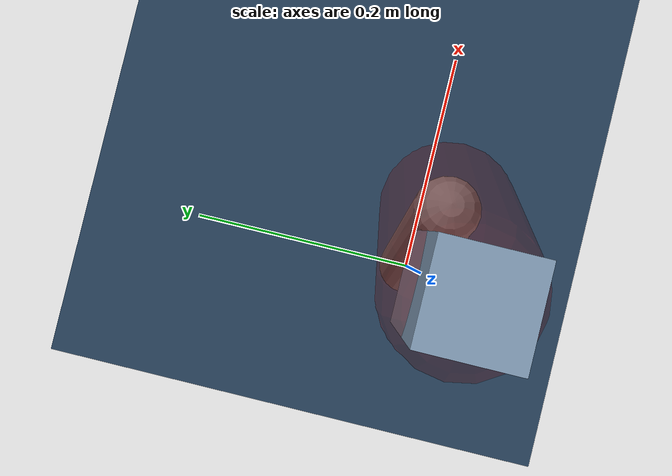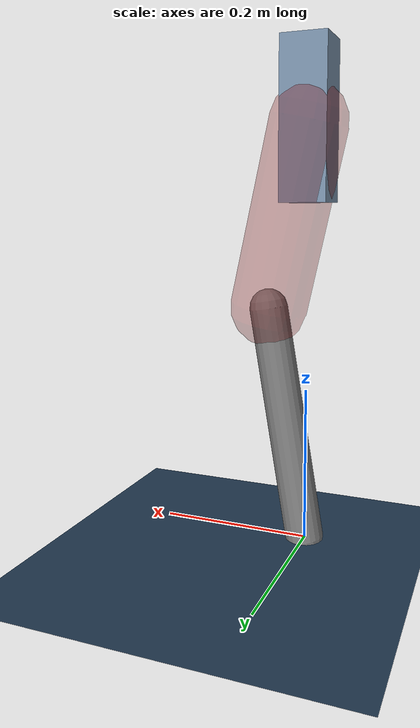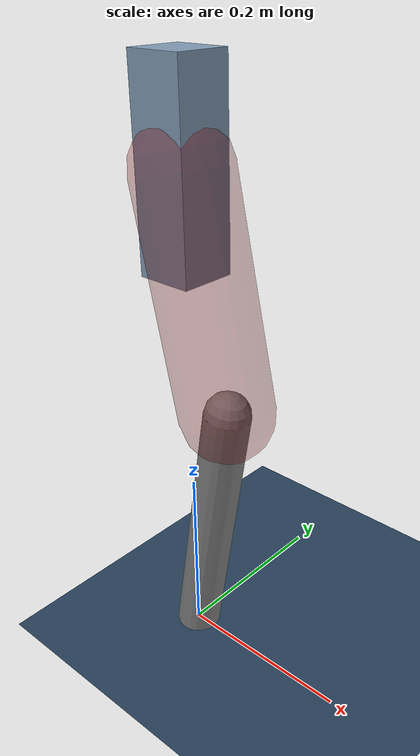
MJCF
<mujoco model="Hopper2D">
	<compiler inertiafromgeom="true" angle="radian" />
	<option timestep="0.001" integrator="implicit" cone="elliptic" solver="Newton" tolerance="1e-10" />

	<default>
		<geom contype="1" conaffinity="1" condim="3" friction="2 0.005 0.0001" solref="0.005 1" />
		<joint limited="true" damping="0.1" />
	</default>

	<asset>
		<texture name="skybox" type="skybox" builtin="gradient" rgb1=".4 .6 .8" rgb2="0 0 0" width="800" height="800" />
		<texture name="grid" type="2d" builtin="checker" rgb1=".1 .2 .3" rgb2=".2 .3 .4" width="300" height="300" mark="edge" markrgb=".2 .3 .4" />
		<material name="ground" texture="grid" texrepeat="1 1" texuniform="true" reflectance="0.1" />
		<material name="leg" rgba="0.5 0.6 0.7 1" />
	</asset>

	<worldbody>

		<geom name="floor" type="plane" size="5 5 0.25" material="ground" />

		<light directional="false" diffuse="0.8 0.8 0.8" specular="0.3 0.3 0.3" pos="0 0 2" dir="0 0 -1" />
		<light mode="targetbodycom" target="base" directional="false" diffuse="0.8 0.8 0.8" specular="0.3 0.3 0.3" pos="0 0 2" dir="0 0 -1" />

		<camera name="fixed" pos="0 -2 1" xyaxes="1 0 0 0 0 1" />
		<camera name="tracking" mode="trackcom" pos="0 -3 1" />

		<body name="root" pos="0 0 0.541099569847755">
			<joint name="slide_x" type="slide" axis="1 0 0" range="-100 100" />
			<joint name="slide_z" type="slide" axis="0 0 1" range="0 10" />

			<body name="base" pos="0 0 0">
				<geom name="torso" type="box" size="0.03 0.03 0.1" mass="2.225" material="leg" />

				<body name="link1" pos="0 0 0" euler="0 1.353779509006586 0">
					<joint type="hinge" axis="0 -1 0" pos="0 0 0" name="hinge1" limited="true" range="-3.14 3.14" stiffness="0" damping="0.1" />
					<geom name="thigh" type="capsule" fromto="0 0 0 0.24065769206277976 0 0" size="0.05" rgba="0.5 0 0 0.3" mass="0.8323099993632275" />

					<body name="link2" pos="0.24065769206277976 0 0" euler="0 0.3847179895047661 0">
						<joint type="hinge" axis="0 -1 0" pos="0 0 0" name="hinge2" limited="true" range="-3.14 3.14" stiffness="0" damping="0.1" />
						<geom name="shank" type="capsule" fromto="0 0 0 0.31044187778497523 0 0" size="0.025" mass="0.4919535022279802" />

					</body>
				</body>
			</body>
		</body>
	</worldbody>

	<actuator>
		<motor name="torque1" joint="hinge1" ctrlrange="-80.75275847898953 80.75275847898953" ctrllimited="true" gear="1" />
		<motor name="torque2" joint="hinge2" ctrlrange="-35.24177354668724 35.24177354668724" ctrllimited="true" gear="1" />
	</actuator>
</mujoco>
